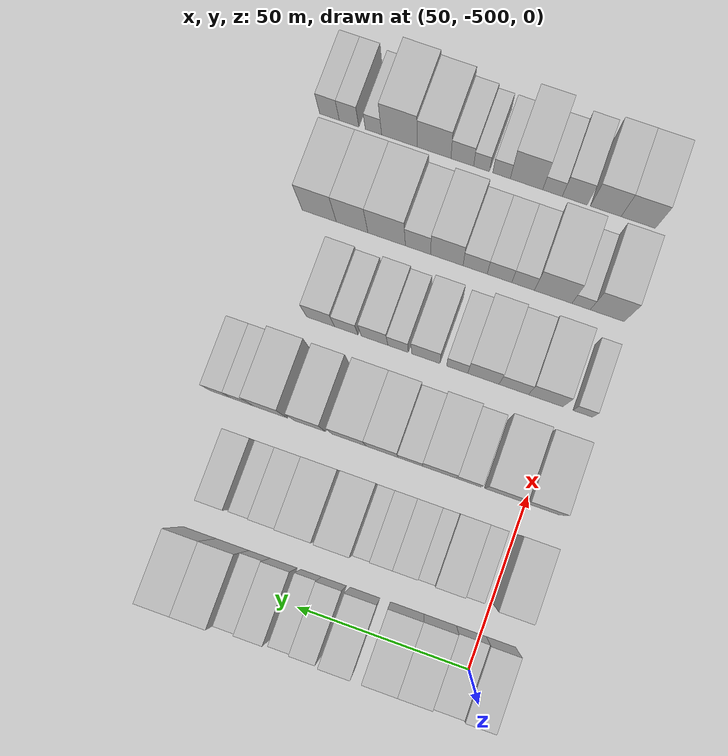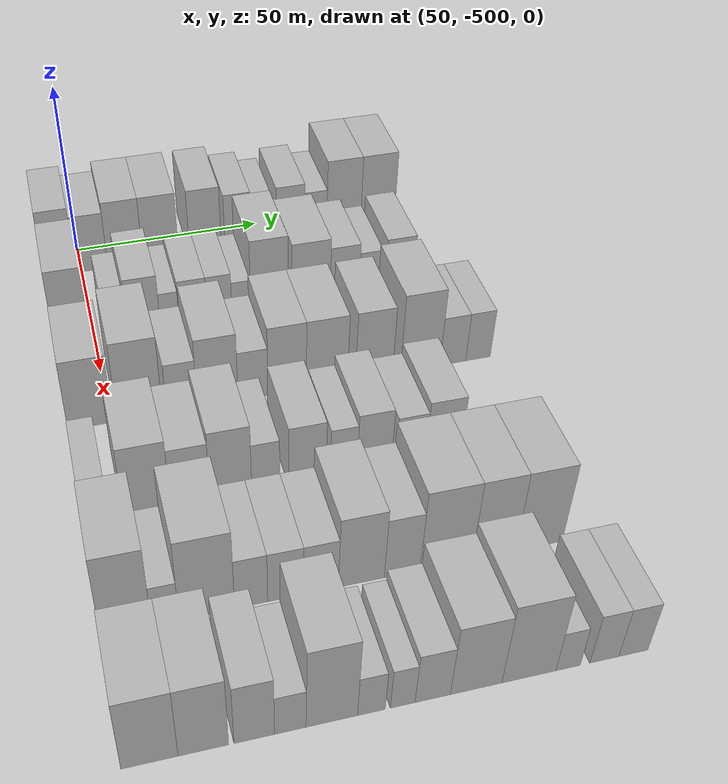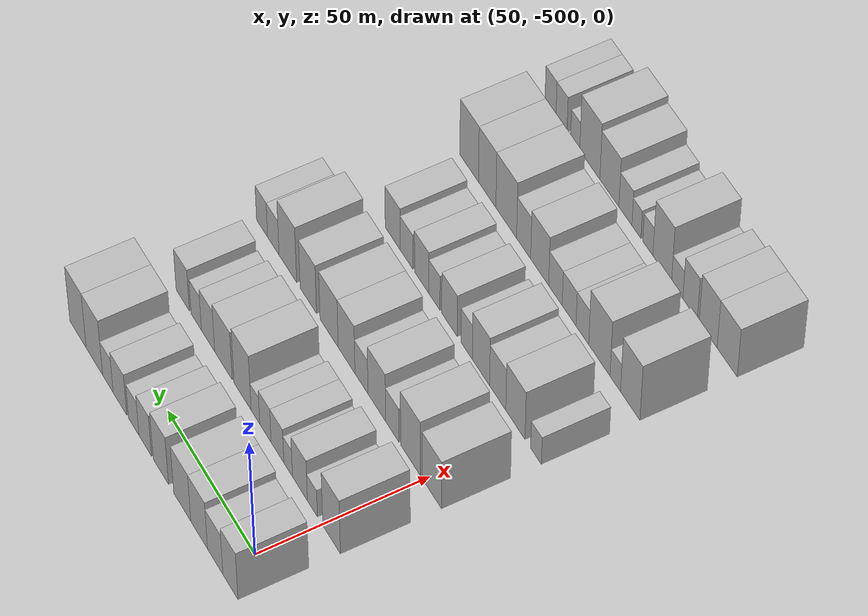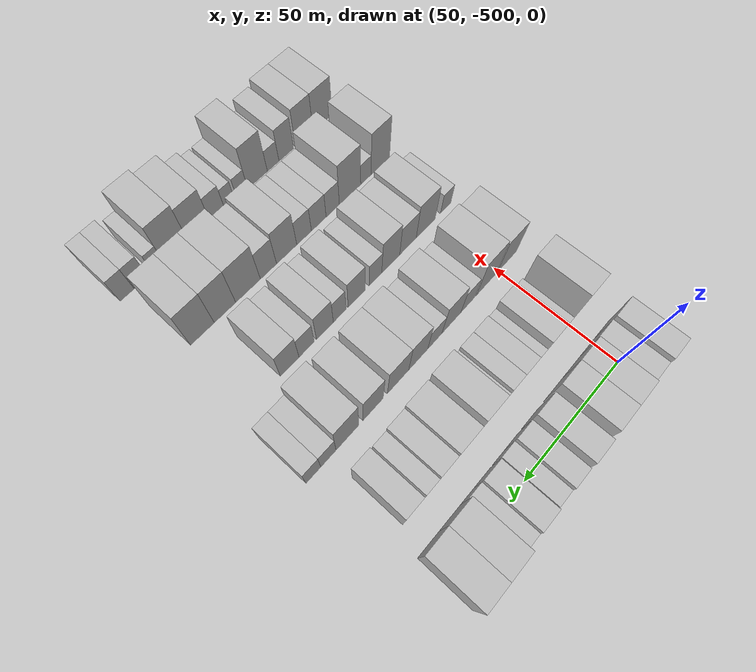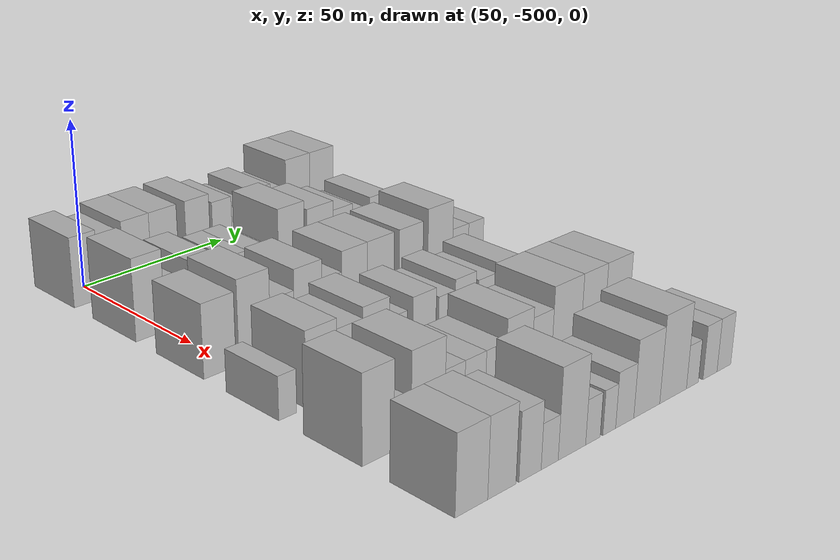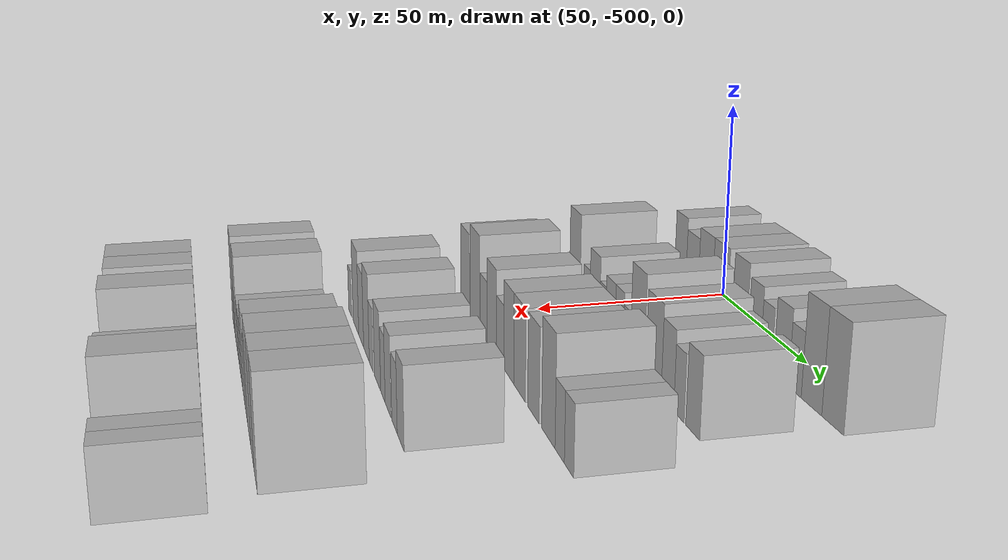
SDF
<sdf version="1.6">
 <world name="default">
  <model name="building_1">
   <static>1</static>
   <pose>50.0000 -505.7804 0 0.000000 0.000000 0.000000</pose>
   <link name="link">
    <pose>0 0 10.50 0 0 0</pose>
    <collision name="collision"><geometry><box><size>20.0000 8.4392 21.0000</size></box></geometry></collision>
    <visual name="visual">
     <cast_shadows>0</cast_shadows>
     <geometry><box><size>20.0000 8.4392 21.0000</size></box></geometry>
     <material>
      <script>
       <uri>model://HANNAS_wall/materials/scripts</uri>
       <uri>model://HANNAS_wall/materials/textures</uri>
       <name>vrc/HANNAS_wall</name>
      </script>
     </material>
    </visual>
   </link>
  </model>
  <model name="building_2">
   <static>1</static>
   <pose>50.0000 -497.2267 0 0.000000 0.000000 0.000000</pose>
   <link name="link">
    <pose>0 0 9.00 0 0 0</pose>
    <collision name="collision"><geometry><box><size>20.0000 8.6683 18.0000</size></box></geometry></collision>
    <visual name="visual">
     <cast_shadows>0</cast_shadows>
     <geometry><box><size>20.0000 8.6683 18.0000</size></box></geometry>
     <material>
      <script>
       <uri>model://HANNAS_wall/materials/scripts</uri>
       <uri>model://HANNAS_wall/materials/textures</uri>
       <name>vrc/HANNAS_wall</name>
      </script>
     </material>
    </visual>
   </link>
  </model>
  <model name="building_3">
   <static>1</static>
   <pose>50.0000 -488.1302 0 0.000000 0.000000 0.000000</pose>
   <link name="link">
    <pose>0 0 10.50 0 0 0</pose>
    <collision name="collision"><geometry><box><size>20.0000 9.5248 21.0000</size></box></geometry></collision>
    <visual name="visual">
     <cast_shadows>0</cast_shadows>
     <geometry><box><size>20.0000 9.5248 21.0000</size></box></geometry>
     <material>
      <script>
       <uri>model://HANNAS_wall/materials/scripts</uri>
       <uri>model://HANNAS_wall/materials/textures</uri>
       <name>vrc/HANNAS_wall</name>
      </script>
     </material>
    </visual>
   </link>
  </model>
  <model name="building_4">
   <static>1</static>
   <pose>50.0000 -478.4753 0 0.000000 0.000000 0.000000</pose>
   <link name="link">
    <pose>0 0 10.50 0 0 0</pose>
    <collision name="collision"><geometry><box><size>20.0000 9.7850 21.0000</size></box></geometry></collision>
    <visual name="visual">
     <cast_shadows>0</cast_shadows>
     <geometry><box><size>20.0000 9.7850 21.0000</size></box></geometry>
     <material>
      <script>
       <uri>model://HANNAS_wall/materials/scripts</uri>
       <uri>model://HANNAS_wall/materials/textures</uri>
       <name>vrc/HANNAS_wall</name>
      </script>
     </material>
    </visual>
   </link>
  </model>
  <model name="building_5">
   <static>1</static>
   <pose>50.0000 -466.1698 0 0.000000 0.000000 0.000000</pose>
   <link name="link">
    <pose>0 0 10.50 0 0 0</pose>
    <collision name="collision"><geometry><box><size>20.0000 8.8261 21.0000</size></box></geometry></collision>
    <visual name="visual">
     <cast_shadows>0</cast_shadows>
     <geometry><box><size>20.0000 8.8261 21.0000</size></box></geometry>
     <material>
      <script>
       <uri>model://HANNAS_wall/materials/scripts</uri>
       <uri>model://HANNAS_wall/materials/textures</uri>
       <name>vrc/HANNAS_wall</name>
      </script>
     </material>
    </visual>
   </link>
  </model>
  <model name="building_6">
   <static>1</static>
   <pose>50.0000 -457.1109 0 0.000000 0.000000 0.000000</pose>
   <link name="link">
    <pose>0 0 9.00 0 0 0</pose>
    <collision name="collision"><geometry><box><size>20.0000 7.2916 18.0000</size></box></geometry></collision>
    <visual name="visual">
     <cast_shadows>0</cast_shadows>
     <geometry><box><size>20.0000 7.2916 18.0000</size></box></geometry>
     <material>
      <script>
       <uri>model://HANNAS_wall/materials/scripts</uri>
       <uri>model://HANNAS_wall/materials/textures</uri>
       <name>vrc/HANNAS_wall</name>
      </script>
     </material>
    </visual>
   </link>
  </model>
  <model name="building_7">
   <static>1</static>
   <pose>50.0000 -450.3802 0 0.000000 0.000000 0.000000</pose>
   <link name="link">
    <pose>0 0 7.50 0 0 0</pose>
    <collision name="collision"><geometry><box><size>20.0000 6.1699 15.0000</size></box></geometry></collision>
    <visual name="visual">
     <cast_shadows>0</cast_shadows>
     <geometry><box><size>20.0000 6.1699 15.0000</size></box></geometry>
     <material>
      <script>
       <uri>model://HANNAS_wall/materials/scripts</uri>
       <uri>model://HANNAS_wall/materials/textures</uri>
       <name>vrc/HANNAS_wall</name>
      </script>
     </material>
    </visual>
   </link>
  </model>
  <model name="building_8">
   <static>1</static>
   <pose>50.0000 -442.2879 0 0.000000 0.000000 0.000000</pose>
   <link name="link">
    <pose>0 0 9.00 0 0 0</pose>
    <collision name="collision"><geometry><box><size>20.0000 8.0148 18.0000</size></box></geometry></collision>
    <visual name="visual">
     <cast_shadows>0</cast_shadows>
     <geometry><box><size>20.0000 8.0148 18.0000</size></box></geometry>
     <material>
      <script>
       <uri>model://HANNAS_wall/materials/scripts</uri>
       <uri>model://HANNAS_wall/materials/textures</uri>
       <name>vrc/HANNAS_wall</name>
      </script>
     </material>
    </visual>
   </link>
  </model>
  <model name="building_9">
   <static>1</static>
   <pose>50.0000 -435.1372 0 0.000000 0.000000 0.000000</pose>
   <link name="link">
    <pose>0 0 7.50 0 0 0</pose>
    <collision name="collision"><geometry><box><size>20.0000 6.2867 15.0000</size></box></geometry></collision>
    <visual name="visual">
     <cast_shadows>0</cast_shadows>
     <geometry><box><size>20.0000 6.2867 15.0000</size></box></geometry>
     <material>
      <script>
       <uri>model://HANNAS_wall/materials/scripts</uri>
       <uri>model://HANNAS_wall/materials/textures</uri>
       <name>vrc/HANNAS_wall</name>
      </script>
     </material>
    </visual>
   </link>
  </model>
  <model name="building_10">
   <static>1</static>
   <pose>50.0000 -427.0935 0 0.000000 0.000000 0.000000</pose>
   <link name="link">
    <pose>0 0 12.00 0 0 0</pose>
    <collision name="collision"><geometry><box><size>20.0000 9.8006 24.0000</size></box></geometry></collision>
    <visual name="visual">
     <cast_shadows>0</cast_shadows>
     <geometry><box><size>20.0000 9.8006 24.0000</size></box></geometry>
     <material>
      <script>
       <uri>model://HANNAS_wall/materials/scripts</uri>
       <uri>model://HANNAS_wall/materials/textures</uri>
       <name>vrc/HANNAS_wall</name>
      </script>
     </material>
    </visual>
   </link>
  </model>
  <model name="building_11">
   <static>1</static>
   <pose>50.0000 -417.2737 0 0.000000 0.000000 0.000000</pose>
   <link name="link">
    <pose>0 0 12.00 0 0 0</pose>
    <collision name="collision"><geometry><box><size>20.0000 9.8390 24.0000</size></box></geometry></collision>
    <visual name="visual">
     <cast_shadows>0</cast_shadows>
     <geometry><box><size>20.0000 9.8390 24.0000</size></box></geometry>
     <material>
      <script>
       <uri>model://HANNAS_wall/materials/scripts</uri>
       <uri>model://HANNAS_wall/materials/textures</uri>
       <name>vrc/HANNAS_wall</name>
      </script>
     </material>
    </visual>
   </link>
  </model>
  <model name="building_113">
   <static>1</static>
   <pose>79.0000 -505.1575 0 0.000000 0.000000 0.000000</pose>
   <link name="link">
    <pose>0 0 12.00 0 0 0</pose>
    <collision name="collision"><geometry><box><size>20.0000 9.6850 24.0000</size></box></geometry></collision>
    <visual name="visual">
     <cast_shadows>0</cast_shadows>
     <geometry><box><size>20.0000 9.6850 24.0000</size></box></geometry>
     <material>
      <script>
       <uri>model://HANNAS_wall/materials/scripts</uri>
       <uri>model://HANNAS_wall/materials/textures</uri>
       <name>vrc/HANNAS_wall</name>
      </script>
     </material>
    </visual>
   </link>
  </model>
  <model name="building_114">
   <static>1</static>
   <pose>79.0000 -494.5348 0 0.000000 0.000000 0.000000</pose>
   <link name="link">
    <pose>0 0 6.00 0 0 0</pose>
    <collision name="collision"><geometry><box><size>20.0000 5.5605 12.0000</size></box></geometry></collision>
    <visual name="visual">
     <cast_shadows>0</cast_shadows>
     <geometry><box><size>20.0000 5.5605 12.0000</size></box></geometry>
     <material>
      <script>
       <uri>model://HANNAS_wall/materials/scripts</uri>
       <uri>model://HANNAS_wall/materials/textures</uri>
       <name>vrc/HANNAS_wall</name>
      </script>
     </material>
    </visual>
   </link>
  </model>
  <model name="building_115">
   <static>1</static>
   <pose>79.0000 -487.5639 0 0.000000 0.000000 0.000000</pose>
   <link name="link">
    <pose>0 0 9.00 0 0 0</pose>
    <collision name="collision"><geometry><box><size>20.0000 8.3813 18.0000</size></box></geometry></collision>
    <visual name="visual">
     <cast_shadows>0</cast_shadows>
     <geometry><box><size>20.0000 8.3813 18.0000</size></box></geometry>
     <material>
      <script>
       <uri>model://HANNAS_wall/materials/scripts</uri>
       <uri>model://HANNAS_wall/materials/textures</uri>
       <name>vrc/HANNAS_wall</name>
      </script>
     </material>
    </visual>
   </link>
  </model>
  <model name="building_116">
   <static>1</static>
   <pose>79.0000 -480.9613 0 0.000000 0.000000 0.000000</pose>
   <link name="link">
    <pose>0 0 6.00 0 0 0</pose>
    <collision name="collision"><geometry><box><size>20.0000 4.8240 12.0000</size></box></geometry></collision>
    <visual name="visual">
     <cast_shadows>0</cast_shadows>
     <geometry><box><size>20.0000 4.8240 12.0000</size></box></geometry>
     <material>
      <script>
       <uri>model://HANNAS_wall/materials/scripts</uri>
       <uri>model://HANNAS_wall/materials/textures</uri>
       <name>vrc/HANNAS_wall</name>
      </script>
     </material>
    </visual>
   </link>
  </model>
  <model name="building_117">
   <static>1</static>
   <pose>79.0000 -474.9723 0 0.000000 0.000000 0.000000</pose>
   <link name="link">
    <pose>0 0 7.50 0 0 0</pose>
    <collision name="collision"><geometry><box><size>20.0000 7.1540 15.0000</size></box></geometry></collision>
    <visual name="visual">
     <cast_shadows>0</cast_shadows>
     <geometry><box><size>20.0000 7.1540 15.0000</size></box></geometry>
     <material>
      <script>
       <uri>model://HANNAS_wall/materials/scripts</uri>
       <uri>model://HANNAS_wall/materials/textures</uri>
       <name>vrc/HANNAS_wall</name>
      </script>
     </material>
    </visual>
   </link>
  </model>
  <model name="building_118">
   <static>1</static>
   <pose>79.0000 -468.1647 0 0.000000 0.000000 0.000000</pose>
   <link name="link">
    <pose>0 0 7.50 0 0 0</pose>
    <collision name="collision"><geometry><box><size>20.0000 6.4611 15.0000</size></box></geometry></collision>
    <visual name="visual">
     <cast_shadows>0</cast_shadows>
     <geometry><box><size>20.0000 6.4611 15.0000</size></box></geometry>
     <material>
      <script>
       <uri>model://HANNAS_wall/materials/scripts</uri>
       <uri>model://HANNAS_wall/materials/textures</uri>
       <name>vrc/HANNAS_wall</name>
      </script>
     </material>
    </visual>
   </link>
  </model>
  <model name="building_119">
   <static>1</static>
   <pose>79.0000 -462.4666 0 0.000000 0.000000 0.000000</pose>
   <link name="link">
    <pose>0 0 6.00 0 0 0</pose>
    <collision name="collision"><geometry><box><size>20.0000 4.9352 12.0000</size></box></geometry></collision>
    <visual name="visual">
     <cast_shadows>0</cast_shadows>
     <geometry><box><size>20.0000 4.9352 12.0000</size></box></geometry>
     <material>
      <script>
       <uri>model://HANNAS_wall/materials/scripts</uri>
       <uri>model://HANNAS_wall/materials/textures</uri>
       <name>vrc/HANNAS_wall</name>
      </script>
     </material>
    </visual>
   </link>
  </model>
  <model name="building_120">
   <static>1</static>
   <pose>79.0000 -455.0817 0 0.000000 0.000000 0.000000</pose>
   <link name="link">
    <pose>0 0 12.00 0 0 0</pose>
    <collision name="collision"><geometry><box><size>20.0000 9.8345 24.0000</size></box></geometry></collision>
    <visual name="visual">
     <cast_shadows>0</cast_shadows>
     <geometry><box><size>20.0000 9.8345 24.0000</size></box></geometry>
     <material>
      <script>
       <uri>model://HANNAS_wall/materials/scripts</uri>
       <uri>model://HANNAS_wall/materials/textures</uri>
       <name>vrc/HANNAS_wall</name>
      </script>
     </material>
    </visual>
   </link>
  </model>
  <model name="building_121">
   <static>1</static>
   <pose>79.0000 -444.0837 0 0.000000 0.000000 0.000000</pose>
   <link name="link">
    <pose>0 0 10.50 0 0 0</pose>
    <collision name="collision"><geometry><box><size>20.0000 10.1616 21.0000</size></box></geometry></collision>
    <visual name="visual">
     <cast_shadows>0</cast_shadows>
     <geometry><box><size>20.0000 10.1616 21.0000</size></box></geometry>
     <material>
      <script>
       <uri>model://HANNAS_wall/materials/scripts</uri>
       <uri>model://HANNAS_wall/materials/textures</uri>
       <name>vrc/HANNAS_wall</name>
      </script>
     </material>
    </visual>
   </link>
  </model>
  <model name="building_122">
   <static>1</static>
   <pose>79.0000 -435.1105 0 0.000000 0.000000 0.000000</pose>
   <link name="link">
    <pose>0 0 9.00 0 0 0</pose>
    <collision name="collision"><geometry><box><size>20.0000 7.7848 18.0000</size></box></geometry></collision>
    <visual name="visual">
     <cast_shadows>0</cast_shadows>
     <geometry><box><size>20.0000 7.7848 18.0000</size></box></geometry>
     <material>
      <script>
       <uri>model://HANNAS_wall/materials/scripts</uri>
       <uri>model://HANNAS_wall/materials/textures</uri>
       <name>vrc/HANNAS_wall</name>
      </script>
     </material>
    </visual>
   </link>
  </model>
  <model name="building_123">
   <static>1</static>
   <pose>79.0000 -428.2041 0 0.000000 0.000000 0.000000</pose>
   <link name="link">
    <pose>0 0 7.50 0 0 0</pose>
    <collision name="collision"><geometry><box><size>20.0000 6.0279 15.0000</size></box></geometry></collision>
    <visual name="visual">
     <cast_shadows>0</cast_shadows>
     <geometry><box><size>20.0000 6.0279 15.0000</size></box></geometry>
     <material>
      <script>
       <uri>model://HANNAS_wall/materials/scripts</uri>
       <uri>model://HANNAS_wall/materials/textures</uri>
       <name>vrc/HANNAS_wall</name>
      </script>
     </material>
    </visual>
   </link>
  </model>
  <model name="building_124">
   <static>1</static>
   <pose>79.0000 -420.2808 0 0.000000 0.000000 0.000000</pose>
   <link name="link">
    <pose>0 0 9.00 0 0 0</pose>
    <collision name="collision"><geometry><box><size>20.0000 7.8188 18.0000</size></box></geometry></collision>
    <visual name="visual">
     <cast_shadows>0</cast_shadows>
     <geometry><box><size>20.0000 7.8188 18.0000</size></box></geometry>
     <material>
      <script>
       <uri>model://HANNAS_wall/materials/scripts</uri>
       <uri>model://HANNAS_wall/materials/textures</uri>
       <name>vrc/HANNAS_wall</name>
      </script>
     </material>
    </visual>
   </link>
  </model>
  <model name="building_226">
   <static>1</static>
   <pose>108.0000 -504.7560 0 0.000000 0.000000 0.000000</pose>
   <link name="link">
    <pose>0 0 10.50 0 0 0</pose>
    <collision name="collision"><geometry><box><size>20.0000 10.4881 21.0000</size></box></geometry></collision>
    <visual name="visual">
     <cast_shadows>0</cast_shadows>
     <geometry><box><size>20.0000 10.4881 21.0000</size></box></geometry>
     <material>
      <script>
       <uri>model://HANNAS_wall/materials/scripts</uri>
       <uri>model://HANNAS_wall/materials/textures</uri>
       <name>vrc/HANNAS_wall</name>
      </script>
     </material>
    </visual>
   </link>
  </model>
  <model name="building_227">
   <static>1</static>
   <pose>108.0000 -493.1572 0 0.000000 0.000000 0.000000</pose>
   <link name="link">
    <pose>0 0 12.00 0 0 0</pose>
    <collision name="collision"><geometry><box><size>20.0000 10.7094 24.0000</size></box></geometry></collision>
    <visual name="visual">
     <cast_shadows>0</cast_shadows>
     <geometry><box><size>20.0000 10.7094 24.0000</size></box></geometry>
     <material>
      <script>
       <uri>model://HANNAS_wall/materials/scripts</uri>
       <uri>model://HANNAS_wall/materials/textures</uri>
       <name>vrc/HANNAS_wall</name>
      </script>
     </material>
    </visual>
   </link>
  </model>
  <model name="building_228">
   <static>1</static>
   <pose>108.0000 -483.1496 0 0.000000 0.000000 0.000000</pose>
   <link name="link">
    <pose>0 0 7.50 0 0 0</pose>
    <collision name="collision"><geometry><box><size>20.0000 7.3059 15.0000</size></box></geometry></collision>
    <visual name="visual">
     <cast_shadows>0</cast_shadows>
     <geometry><box><size>20.0000 7.3059 15.0000</size></box></geometry>
     <material>
      <script>
       <uri>model://HANNAS_wall/materials/scripts</uri>
       <uri>model://HANNAS_wall/materials/textures</uri>
       <name>vrc/HANNAS_wall</name>
      </script>
     </material>
    </visual>
   </link>
  </model>
  <model name="building_229">
   <static>1</static>
   <pose>108.0000 -474.5673 0 0.000000 0.000000 0.000000</pose>
   <link name="link">
    <pose>0 0 10.50 0 0 0</pose>
    <collision name="collision"><geometry><box><size>20.0000 9.8587 21.0000</size></box></geometry></collision>
    <visual name="visual">
     <cast_shadows>0</cast_shadows>
     <geometry><box><size>20.0000 9.8587 21.0000</size></box></geometry>
     <material>
      <script>
       <uri>model://HANNAS_wall/materials/scripts</uri>
       <uri>model://HANNAS_wall/materials/textures</uri>
       <name>vrc/HANNAS_wall</name>
      </script>
     </material>
    </visual>
   </link>
  </model>
  <model name="building_230">
   <static>1</static>
   <pose>108.0000 -465.9992 0 0.000000 0.000000 0.000000</pose>
   <link name="link">
    <pose>0 0 7.50 0 0 0</pose>
    <collision name="collision"><geometry><box><size>20.0000 7.2774 15.0000</size></box></geometry></collision>
    <visual name="visual">
     <cast_shadows>0</cast_shadows>
     <geometry><box><size>20.0000 7.2774 15.0000</size></box></geometry>
     <material>
      <script>
       <uri>model://HANNAS_wall/materials/scripts</uri>
       <uri>model://HANNAS_wall/materials/textures</uri>
       <name>vrc/HANNAS_wall</name>
      </script>
     </material>
    </visual>
   </link>
  </model>
  <model name="building_231">
   <static>1</static>
   <pose>108.0000 -457.6447 0 0.000000 0.000000 0.000000</pose>
   <link name="link">
    <pose>0 0 10.50 0 0 0</pose>
    <collision name="collision"><geometry><box><size>20.0000 9.4317 21.0000</size></box></geometry></collision>
    <visual name="visual">
     <cast_shadows>0</cast_shadows>
     <geometry><box><size>20.0000 9.4317 21.0000</size></box></geometry>
     <material>
      <script>
       <uri>model://HANNAS_wall/materials/scripts</uri>
       <uri>model://HANNAS_wall/materials/textures</uri>
       <name>vrc/HANNAS_wall</name>
      </script>
     </material>
    </visual>
   </link>
  </model>
  <model name="building_232">
   <static>1</static>
   <pose>108.0000 -447.7664 0 0.000000 0.000000 0.000000</pose>
   <link name="link">
    <pose>0 0 10.50 0 0 0</pose>
    <collision name="collision"><geometry><box><size>20.0000 10.3249 21.0000</size></box></geometry></collision>
    <visual name="visual">
     <cast_shadows>0</cast_shadows>
     <geometry><box><size>20.0000 10.3249 21.0000</size></box></geometry>
     <material>
      <script>
       <uri>model://HANNAS_wall/materials/scripts</uri>
       <uri>model://HANNAS_wall/materials/textures</uri>
       <name>vrc/HANNAS_wall</name>
      </script>
     </material>
    </visual>
   </link>
  </model>
  <model name="building_233">
   <static>1</static>
   <pose>108.0000 -435.9049 0 0.000000 0.000000 0.000000</pose>
   <link name="link">
    <pose>0 0 10.50 0 0 0</pose>
    <collision name="collision"><geometry><box><size>20.0000 9.3981 21.0000</size></box></geometry></collision>
    <visual name="visual">
     <cast_shadows>0</cast_shadows>
     <geometry><box><size>20.0000 9.3981 21.0000</size></box></geometry>
     <material>
      <script>
       <uri>model://HANNAS_wall/materials/scripts</uri>
       <uri>model://HANNAS_wall/materials/textures</uri>
       <name>vrc/HANNAS_wall</name>
      </script>
     </material>
    </visual>
   </link>
  </model>
  <model name="building_234">
   <static>1</static>
   <pose>108.0000 -424.1078 0 0.000000 0.000000 0.000000</pose>
   <link name="link">
    <pose>0 0 12.00 0 0 0</pose>
    <collision name="collision"><geometry><box><size>20.0000 10.1962 24.0000</size></box></geometry></collision>
    <visual name="visual">
     <cast_shadows>0</cast_shadows>
     <geometry><box><size>20.0000 10.1962 24.0000</size></box></geometry>
     <material>
      <script>
       <uri>model://HANNAS_wall/materials/scripts</uri>
       <uri>model://HANNAS_wall/materials/textures</uri>
       <name>vrc/HANNAS_wall</name>
      </script>
     </material>
    </visual>
   </link>
  </model>
  <model name="building_235">
   <static>1</static>
   <pose>108.0000 -415.6591 0 0.000000 0.000000 0.000000</pose>
   <link name="link">
    <pose>0 0 7.50 0 0 0</pose>
    <collision name="collision"><geometry><box><size>20.0000 6.7012 15.0000</size></box></geometry></collision>
    <visual name="visual">
     <cast_shadows>0</cast_shadows>
     <geometry><box><size>20.0000 6.7012 15.0000</size></box></geometry>
     <material>
      <script>
       <uri>model://HANNAS_wall/materials/scripts</uri>
       <uri>model://HANNAS_wall/materials/textures</uri>
       <name>vrc/HANNAS_wall</name>
      </script>
     </material>
    </visual>
   </link>
  </model>
  <model name="building_236">
   <static>1</static>
   <pose>108.0000 -409.0995 0 0.000000 0.000000 0.000000</pose>
   <link name="link">
    <pose>0 0 7.50 0 0 0</pose>
    <collision name="collision"><geometry><box><size>20.0000 6.4179 15.0000</size></box></geometry></collision>
    <visual name="visual">
     <cast_shadows>0</cast_shadows>
     <geometry><box><size>20.0000 6.4179 15.0000</size></box></geometry>
     <material>
      <script>
       <uri>model://HANNAS_wall/materials/scripts</uri>
       <uri>model://HANNAS_wall/materials/textures</uri>
       <name>vrc/HANNAS_wall</name>
      </script>
     </material>
    </visual>
   </link>
  </model>
  <model name="building_338">
   <static>1</static>
   <pose>137.0000 -507.1311 0 0.000000 0.000000 0.000000</pose>
   <link name="link">
    <pose>0 0 6.00 0 0 0</pose>
    <collision name="collision"><geometry><box><size>20.0000 5.7378 12.0000</size></box></geometry></collision>
    <visual name="visual">
     <cast_shadows>0</cast_shadows>
     <geometry><box><size>20.0000 5.7378 12.0000</size></box></geometry>
     <material>
      <script>
       <uri>model://HANNAS_wall/materials/scripts</uri>
       <uri>model://HANNAS_wall/materials/textures</uri>
       <name>vrc/HANNAS_wall</name>
      </script>
     </material>
    </visual>
   </link>
  </model>
  <model name="building_339">
   <static>1</static>
   <pose>137.0000 -496.1020 0 0.000000 0.000000 0.000000</pose>
   <link name="link">
    <pose>0 0 10.50 0 0 0</pose>
    <collision name="collision"><geometry><box><size>20.0000 10.3204 21.0000</size></box></geometry></collision>
    <visual name="visual">
     <cast_shadows>0</cast_shadows>
     <geometry><box><size>20.0000 10.3204 21.0000</size></box></geometry>
     <material>
      <script>
       <uri>model://HANNAS_wall/materials/scripts</uri>
       <uri>model://HANNAS_wall/materials/textures</uri>
       <name>vrc/HANNAS_wall</name>
      </script>
     </material>
    </visual>
   </link>
  </model>
  <model name="building_340">
   <static>1</static>
   <pose>137.0000 -486.5506 0 0.000000 0.000000 0.000000</pose>
   <link name="link">
    <pose>0 0 9.00 0 0 0</pose>
    <collision name="collision"><geometry><box><size>20.0000 8.7823 18.0000</size></box></geometry></collision>
    <visual name="visual">
     <cast_shadows>0</cast_shadows>
     <geometry><box><size>20.0000 8.7823 18.0000</size></box></geometry>
     <material>
      <script>
       <uri>model://HANNAS_wall/materials/scripts</uri>
       <uri>model://HANNAS_wall/materials/textures</uri>
       <name>vrc/HANNAS_wall</name>
      </script>
     </material>
    </visual>
   </link>
  </model>
  <model name="building_341">
   <static>1</static>
   <pose>137.0000 -477.4898 0 0.000000 0.000000 0.000000</pose>
   <link name="link">
    <pose>0 0 10.50 0 0 0</pose>
    <collision name="collision"><geometry><box><size>20.0000 9.3394 21.0000</size></box></geometry></collision>
    <visual name="visual">
     <cast_shadows>0</cast_shadows>
     <geometry><box><size>20.0000 9.3394 21.0000</size></box></geometry>
     <material>
      <script>
       <uri>model://HANNAS_wall/materials/scripts</uri>
       <uri>model://HANNAS_wall/materials/textures</uri>
       <name>vrc/HANNAS_wall</name>
      </script>
     </material>
    </visual>
   </link>
  </model>
  <model name="building_342">
   <static>1</static>
   <pose>137.0000 -469.6445 0 0.000000 0.000000 0.000000</pose>
   <link name="link">
    <pose>0 0 7.50 0 0 0</pose>
    <collision name="collision"><geometry><box><size>20.0000 6.3512 15.0000</size></box></geometry></collision>
    <visual name="visual">
     <cast_shadows>0</cast_shadows>
     <geometry><box><size>20.0000 6.3512 15.0000</size></box></geometry>
     <material>
      <script>
       <uri>model://HANNAS_wall/materials/scripts</uri>
       <uri>model://HANNAS_wall/materials/textures</uri>
       <name>vrc/HANNAS_wall</name>
      </script>
     </material>
    </visual>
   </link>
  </model>
  <model name="building_343">
   <static>1</static>
   <pose>137.0000 -460.2018 0 0.000000 0.000000 0.000000</pose>
   <link name="link">
    <pose>0 0 9.00 0 0 0</pose>
    <collision name="collision"><geometry><box><size>20.0000 8.5340 18.0000</size></box></geometry></collision>
    <visual name="visual">
     <cast_shadows>0</cast_shadows>
     <geometry><box><size>20.0000 8.5340 18.0000</size></box></geometry>
     <material>
      <script>
       <uri>model://HANNAS_wall/materials/scripts</uri>
       <uri>model://HANNAS_wall/materials/textures</uri>
       <name>vrc/HANNAS_wall</name>
      </script>
     </material>
    </visual>
   </link>
  </model>
  <model name="building_344">
   <static>1</static>
   <pose>137.0000 -451.8562 0 0.000000 0.000000 0.000000</pose>
   <link name="link">
    <pose>0 0 7.50 0 0 0</pose>
    <collision name="collision"><geometry><box><size>20.0000 6.1572 15.0000</size></box></geometry></collision>
    <visual name="visual">
     <cast_shadows>0</cast_shadows>
     <geometry><box><size>20.0000 6.1572 15.0000</size></box></geometry>
     <material>
      <script>
       <uri>model://HANNAS_wall/materials/scripts</uri>
       <uri>model://HANNAS_wall/materials/textures</uri>
       <name>vrc/HANNAS_wall</name>
      </script>
     </material>
    </visual>
   </link>
  </model>
  <model name="building_345">
   <static>1</static>
   <pose>137.0000 -444.7564 0 0.000000 0.000000 0.000000</pose>
   <link name="link">
    <pose>0 0 9.00 0 0 0</pose>
    <collision name="collision"><geometry><box><size>20.0000 8.0424 18.0000</size></box></geometry></collision>
    <visual name="visual">
     <cast_shadows>0</cast_shadows>
     <geometry><box><size>20.0000 8.0424 18.0000</size></box></geometry>
     <material>
      <script>
       <uri>model://HANNAS_wall/materials/scripts</uri>
       <uri>model://HANNAS_wall/materials/textures</uri>
       <name>vrc/HANNAS_wall</name>
      </script>
     </material>
    </visual>
   </link>
  </model>
  <model name="building_346">
   <static>1</static>
   <pose>137.0000 -436.1970 0 0.000000 0.000000 0.000000</pose>
   <link name="link">
    <pose>0 0 7.50 0 0 0</pose>
    <collision name="collision"><geometry><box><size>20.0000 7.0765 15.0000</size></box></geometry></collision>
    <visual name="visual">
     <cast_shadows>0</cast_shadows>
     <geometry><box><size>20.0000 7.0765 15.0000</size></box></geometry>
     <material>
      <script>
       <uri>model://HANNAS_wall/materials/scripts</uri>
       <uri>model://HANNAS_wall/materials/textures</uri>
       <name>vrc/HANNAS_wall</name>
      </script>
     </material>
    </visual>
   </link>
  </model>
  <model name="building_347">
   <static>1</static>
   <pose>137.0000 -428.4018 0 0.000000 0.000000 0.000000</pose>
   <link name="link">
    <pose>0 0 9.00 0 0 0</pose>
    <collision name="collision"><geometry><box><size>20.0000 8.5139 18.0000</size></box></geometry></collision>
    <visual name="visual">
     <cast_shadows>0</cast_shadows>
     <geometry><box><size>20.0000 8.5139 18.0000</size></box></geometry>
     <material>
      <script>
       <uri>model://HANNAS_wall/materials/scripts</uri>
       <uri>model://HANNAS_wall/materials/textures</uri>
       <name>vrc/HANNAS_wall</name>
      </script>
     </material>
    </visual>
   </link>
  </model>
  <model name="building_450">
   <static>1</static>
   <pose>166.0000 -504.8908 0 0.000000 0.000000 0.000000</pose>
   <link name="link">
    <pose>0 0 12.00 0 0 0</pose>
    <collision name="collision"><geometry><box><size>20.0000 10.2185 24.0000</size></box></geometry></collision>
    <visual name="visual">
     <cast_shadows>0</cast_shadows>
     <geometry><box><size>20.0000 10.2185 24.0000</size></box></geometry>
     <material>
      <script>
       <uri>model://HANNAS_wall/materials/scripts</uri>
       <uri>model://HANNAS_wall/materials/textures</uri>
       <name>vrc/HANNAS_wall</name>
      </script>
     </material>
    </visual>
   </link>
  </model>
  <model name="building_451">
   <static>1</static>
   <pose>166.0000 -497.0131 0 0.000000 0.000000 0.000000</pose>
   <link name="link">
    <pose>0 0 6.00 0 0 0</pose>
    <collision name="collision"><geometry><box><size>20.0000 5.5368 12.0000</size></box></geometry></collision>
    <visual name="visual">
     <cast_shadows>0</cast_shadows>
     <geometry><box><size>20.0000 5.5368 12.0000</size></box></geometry>
     <material>
      <script>
       <uri>model://HANNAS_wall/materials/scripts</uri>
       <uri>model://HANNAS_wall/materials/textures</uri>
       <name>vrc/HANNAS_wall</name>
      </script>
     </material>
    </visual>
   </link>
  </model>
  <model name="building_452">
   <static>1</static>
   <pose>166.0000 -488.5651 0 0.000000 0.000000 0.000000</pose>
   <link name="link">
    <pose>0 0 12.00 0 0 0</pose>
    <collision name="collision"><geometry><box><size>20.0000 11.3593 24.0000</size></box></geometry></collision>
    <visual name="visual">
     <cast_shadows>0</cast_shadows>
     <geometry><box><size>20.0000 11.3593 24.0000</size></box></geometry>
     <material>
      <script>
       <uri>model://HANNAS_wall/materials/scripts</uri>
       <uri>model://HANNAS_wall/materials/textures</uri>
       <name>vrc/HANNAS_wall</name>
      </script>
     </material>
    </visual>
   </link>
  </model>
  <model name="building_453">
   <static>1</static>
   <pose>166.0000 -479.4649 0 0.000000 0.000000 0.000000</pose>
   <link name="link">
    <pose>0 0 7.50 0 0 0</pose>
    <collision name="collision"><geometry><box><size>20.0000 6.8411 15.0000</size></box></geometry></collision>
    <visual name="visual">
     <cast_shadows>0</cast_shadows>
     <geometry><box><size>20.0000 6.8411 15.0000</size></box></geometry>
     <material>
      <script>
       <uri>model://HANNAS_wall/materials/scripts</uri>
       <uri>model://HANNAS_wall/materials/textures</uri>
       <name>vrc/HANNAS_wall</name>
      </script>
     </material>
    </visual>
   </link>
  </model>
  <model name="building_454">
   <static>1</static>
   <pose>166.0000 -472.3177 0 0.000000 0.000000 0.000000</pose>
   <link name="link">
    <pose>0 0 7.50 0 0 0</pose>
    <collision name="collision"><geometry><box><size>20.0000 7.4531 15.0000</size></box></geometry></collision>
    <visual name="visual">
     <cast_shadows>0</cast_shadows>
     <geometry><box><size>20.0000 7.4531 15.0000</size></box></geometry>
     <material>
      <script>
       <uri>model://HANNAS_wall/materials/scripts</uri>
       <uri>model://HANNAS_wall/materials/textures</uri>
       <name>vrc/HANNAS_wall</name>
      </script>
     </material>
    </visual>
   </link>
  </model>
  <model name="building_455">
   <static>1</static>
   <pose>166.0000 -464.9196 0 0.000000 0.000000 0.000000</pose>
   <link name="link">
    <pose>0 0 7.50 0 0 0</pose>
    <collision name="collision"><geometry><box><size>20.0000 7.3432 15.0000</size></box></geometry></collision>
    <visual name="visual">
     <cast_shadows>0</cast_shadows>
     <geometry><box><size>20.0000 7.3432 15.0000</size></box></geometry>
     <material>
      <script>
       <uri>model://HANNAS_wall/materials/scripts</uri>
       <uri>model://HANNAS_wall/materials/textures</uri>
       <name>vrc/HANNAS_wall</name>
      </script>
     </material>
    </visual>
   </link>
  </model>
  <model name="building_456">
   <static>1</static>
   <pose>166.0000 -456.3303 0 0.000000 0.000000 0.000000</pose>
   <link name="link">
    <pose>0 0 10.50 0 0 0</pose>
    <collision name="collision"><geometry><box><size>20.0000 9.8352 21.0000</size></box></geometry></collision>
    <visual name="visual">
     <cast_shadows>0</cast_shadows>
     <geometry><box><size>20.0000 9.8352 21.0000</size></box></geometry>
     <material>
      <script>
       <uri>model://HANNAS_wall/materials/scripts</uri>
       <uri>model://HANNAS_wall/materials/textures</uri>
       <name>vrc/HANNAS_wall</name>
      </script>
     </material>
    </visual>
   </link>
  </model>
  <model name="building_457">
   <static>1</static>
   <pose>166.0000 -447.5429 0 0.000000 0.000000 0.000000</pose>
   <link name="link">
    <pose>0 0 9.00 0 0 0</pose>
    <collision name="collision"><geometry><box><size>20.0000 7.7396 18.0000</size></box></geometry></collision>
    <visual name="visual">
     <cast_shadows>0</cast_shadows>
     <geometry><box><size>20.0000 7.7396 18.0000</size></box></geometry>
     <material>
      <script>
       <uri>model://HANNAS_wall/materials/scripts</uri>
       <uri>model://HANNAS_wall/materials/textures</uri>
       <name>vrc/HANNAS_wall</name>
      </script>
     </material>
    </visual>
   </link>
  </model>
  <model name="building_458">
   <static>1</static>
   <pose>166.0000 -437.9318 0 0.000000 0.000000 0.000000</pose>
   <link name="link">
    <pose>0 0 12.00 0 0 0</pose>
    <collision name="collision"><geometry><box><size>20.0000 11.4827 24.0000</size></box></geometry></collision>
    <visual name="visual">
     <cast_shadows>0</cast_shadows>
     <geometry><box><size>20.0000 11.4827 24.0000</size></box></geometry>
     <material>
      <script>
       <uri>model://HANNAS_wall/materials/scripts</uri>
       <uri>model://HANNAS_wall/materials/textures</uri>
       <name>vrc/HANNAS_wall</name>
      </script>
     </material>
    </visual>
   </link>
  </model>
  <model name="building_459">
   <static>1</static>
   <pose>166.0000 -427.3333 0 0.000000 0.000000 0.000000</pose>
   <link name="link">
    <pose>0 0 12.00 0 0 0</pose>
    <collision name="collision"><geometry><box><size>20.0000 9.7144 24.0000</size></box></geometry></collision>
    <visual name="visual">
     <cast_shadows>0</cast_shadows>
     <geometry><box><size>20.0000 9.7144 24.0000</size></box></geometry>
     <material>
      <script>
       <uri>model://HANNAS_wall/materials/scripts</uri>
       <uri>model://HANNAS_wall/materials/textures</uri>
       <name>vrc/HANNAS_wall</name>
      </script>
     </material>
    </visual>
   </link>
  </model>
  <model name="building_460">
   <static>1</static>
   <pose>166.0000 -417.2448 0 0.000000 0.000000 0.000000</pose>
   <link name="link">
    <pose>0 0 12.00 0 0 0</pose>
    <collision name="collision"><geometry><box><size>20.0000 10.4625 24.0000</size></box></geometry></collision>
    <visual name="visual">
     <cast_shadows>0</cast_shadows>
     <geometry><box><size>20.0000 10.4625 24.0000</size></box></geometry>
     <material>
      <script>
       <uri>model://HANNAS_wall/materials/scripts</uri>
       <uri>model://HANNAS_wall/materials/textures</uri>
       <name>vrc/HANNAS_wall</name>
      </script>
     </material>
    </visual>
   </link>
  </model>
  <model name="building_553">
   <static>1</static>
   <pose>195.0000 -504.7843 0 0.000000 0.000000 0.000000</pose>
   <link name="link">
    <pose>0 0 10.50 0 0 0</pose>
    <collision name="collision"><geometry><box><size>20.0000 10.4314 21.0000</size></box></geometry></collision>
    <visual name="visual">
     <cast_shadows>0</cast_shadows>
     <geometry><box><size>20.0000 10.4314 21.0000</size></box></geometry>
     <material>
      <script>
       <uri>model://HANNAS_wall/materials/scripts</uri>
       <uri>model://HANNAS_wall/materials/textures</uri>
       <name>vrc/HANNAS_wall</name>
      </script>
     </material>
    </visual>
   </link>
  </model>
  <model name="building_554">
   <static>1</static>
   <pose>195.0000 -494.8892 0 0.000000 0.000000 0.000000</pose>
   <link name="link">
    <pose>0 0 10.50 0 0 0</pose>
    <collision name="collision"><geometry><box><size>20.0000 9.3587 21.0000</size></box></geometry></collision>
    <visual name="visual">
     <cast_shadows>0</cast_shadows>
     <geometry><box><size>20.0000 9.3587 21.0000</size></box></geometry>
     <material>
      <script>
       <uri>model://HANNAS_wall/materials/scripts</uri>
       <uri>model://HANNAS_wall/materials/textures</uri>
       <name>vrc/HANNAS_wall</name>
      </script>
     </material>
    </visual>
   </link>
  </model>
  <model name="building_555">
   <static>1</static>
   <pose>195.0000 -485.4062 0 0.000000 0.000000 0.000000</pose>
   <link name="link">
    <pose>0 0 9.00 0 0 0</pose>
    <collision name="collision"><geometry><box><size>20.0000 7.6072 18.0000</size></box></geometry></collision>
    <visual name="visual">
     <cast_shadows>0</cast_shadows>
     <geometry><box><size>20.0000 7.6072 18.0000</size></box></geometry>
     <material>
      <script>
       <uri>model://HANNAS_wall/materials/scripts</uri>
       <uri>model://HANNAS_wall/materials/textures</uri>
       <name>vrc/HANNAS_wall</name>
      </script>
     </material>
    </visual>
   </link>
  </model>
  <model name="building_556">
   <static>1</static>
   <pose>195.0000 -478.6053 0 0.000000 0.000000 0.000000</pose>
   <link name="link">
    <pose>0 0 6.00 0 0 0</pose>
    <collision name="collision"><geometry><box><size>20.0000 5.9947 12.0000</size></box></geometry></collision>
    <visual name="visual">
     <cast_shadows>0</cast_shadows>
     <geometry><box><size>20.0000 5.9947 12.0000</size></box></geometry>
     <material>
      <script>
       <uri>model://HANNAS_wall/materials/scripts</uri>
       <uri>model://HANNAS_wall/materials/textures</uri>
       <name>vrc/HANNAS_wall</name>
      </script>
     </material>
    </visual>
   </link>
  </model>
  <model name="building_557">
   <static>1</static>
   <pose>195.0000 -470.6420 0 0.000000 0.000000 0.000000</pose>
   <link name="link">
    <pose>0 0 12.00 0 0 0</pose>
    <collision name="collision"><geometry><box><size>20.0000 9.9318 24.0000</size></box></geometry></collision>
    <visual name="visual">
     <cast_shadows>0</cast_shadows>
     <geometry><box><size>20.0000 9.9318 24.0000</size></box></geometry>
     <material>
      <script>
       <uri>model://HANNAS_wall/materials/scripts</uri>
       <uri>model://HANNAS_wall/materials/textures</uri>
       <name>vrc/HANNAS_wall</name>
      </script>
     </material>
    </visual>
   </link>
  </model>
  <model name="building_558">
   <static>1</static>
   <pose>195.0000 -462.9730 0 0.000000 0.000000 0.000000</pose>
   <link name="link">
    <pose>0 0 6.00 0 0 0</pose>
    <collision name="collision"><geometry><box><size>20.0000 5.4063 12.0000</size></box></geometry></collision>
    <visual name="visual">
     <cast_shadows>0</cast_shadows>
     <geometry><box><size>20.0000 5.4063 12.0000</size></box></geometry>
     <material>
      <script>
       <uri>model://HANNAS_wall/materials/scripts</uri>
       <uri>model://HANNAS_wall/materials/textures</uri>
       <name>vrc/HANNAS_wall</name>
      </script>
     </material>
    </visual>
   </link>
  </model>
  <model name="building_559">
   <static>1</static>
   <pose>195.0000 -456.8382 0 0.000000 0.000000 0.000000</pose>
   <link name="link">
    <pose>0 0 6.00 0 0 0</pose>
    <collision name="collision"><geometry><box><size>20.0000 4.8633 12.0000</size></box></geometry></collision>
    <visual name="visual">
     <cast_shadows>0</cast_shadows>
     <geometry><box><size>20.0000 4.8633 12.0000</size></box></geometry>
     <material>
      <script>
       <uri>model://HANNAS_wall/materials/scripts</uri>
       <uri>model://HANNAS_wall/materials/textures</uri>
       <name>vrc/HANNAS_wall</name>
      </script>
     </material>
    </visual>
   </link>
  </model>
  <model name="building_560">
   <static>1</static>
   <pose>195.0000 -450.9000 0 0.000000 0.000000 0.000000</pose>
   <link name="link">
    <pose>0 0 7.50 0 0 0</pose>
    <collision name="collision"><geometry><box><size>20.0000 7.0131 15.0000</size></box></geometry></collision>
    <visual name="visual">
     <cast_shadows>0</cast_shadows>
     <geometry><box><size>20.0000 7.0131 15.0000</size></box></geometry>
     <material>
      <script>
       <uri>model://HANNAS_wall/materials/scripts</uri>
       <uri>model://HANNAS_wall/materials/textures</uri>
       <name>vrc/HANNAS_wall</name>
      </script>
     </material>
    </visual>
   </link>
  </model>
  <model name="building_561">
   <static>1</static>
   <pose>195.0000 -442.1988 0 0.000000 0.000000 0.000000</pose>
   <link name="link">
    <pose>0 0 10.50 0 0 0</pose>
    <collision name="collision"><geometry><box><size>20.0000 10.3893 21.0000</size></box></geometry></collision>
    <visual name="visual">
     <cast_shadows>0</cast_shadows>
     <geometry><box><size>20.0000 10.3893 21.0000</size></box></geometry>
     <material>
      <script>
       <uri>model://HANNAS_wall/materials/scripts</uri>
       <uri>model://HANNAS_wall/materials/textures</uri>
       <name>vrc/HANNAS_wall</name>
      </script>
     </material>
    </visual>
   </link>
  </model>
  <model name="building_562">
   <static>1</static>
   <pose>195.0000 -431.4692 0 0.000000 0.000000 0.000000</pose>
   <link name="link">
    <pose>0 0 12.00 0 0 0</pose>
    <collision name="collision"><geometry><box><size>20.0000 11.0700 24.0000</size></box></geometry></collision>
    <visual name="visual">
     <cast_shadows>0</cast_shadows>
     <geometry><box><size>20.0000 11.0700 24.0000</size></box></geometry>
     <material>
      <script>
       <uri>model://HANNAS_wall/materials/scripts</uri>
       <uri>model://HANNAS_wall/materials/textures</uri>
       <name>vrc/HANNAS_wall</name>
      </script>
     </material>
    </visual>
   </link>
  </model>
  <model name="building_563">
   <static>1</static>
   <pose>195.0000 -423.4018 0 0.000000 0.000000 0.000000</pose>
   <link name="link">
    <pose>0 0 6.00 0 0 0</pose>
    <collision name="collision"><geometry><box><size>20.0000 5.0647 12.0000</size></box></geometry></collision>
    <visual name="visual">
     <cast_shadows>0</cast_shadows>
     <geometry><box><size>20.0000 5.0647 12.0000</size></box></geometry>
     <material>
      <script>
       <uri>model://HANNAS_wall/materials/scripts</uri>
       <uri>model://HANNAS_wall/materials/textures</uri>
       <name>vrc/HANNAS_wall</name>
      </script>
     </material>
    </visual>
   </link>
  </model>
  <model name="building_564">
   <static>1</static>
   <pose>195.0000 -415.8171 0 0.000000 0.000000 0.000000</pose>
   <link name="link">
    <pose>0 0 7.50 0 0 0</pose>
    <collision name="collision"><geometry><box><size>20.0000 6.1049 15.0000</size></box></geometry></collision>
    <visual name="visual">
     <cast_shadows>0</cast_shadows>
     <geometry><box><size>20.0000 6.1049 15.0000</size></box></geometry>
     <material>
      <script>
       <uri>model://HANNAS_wall/materials/scripts</uri>
       <uri>model://HANNAS_wall/materials/textures</uri>
       <name>vrc/HANNAS_wall</name>
      </script>
     </material>
    </visual>
   </link>
  </model>
  <model name="building_565">
   <static>1</static>
   <pose>195.0000 -409.7051 0 0.000000 0.000000 0.000000</pose>
   <link name="link">
    <pose>0 0 7.50 0 0 0</pose>
    <collision name="collision"><geometry><box><size>20.0000 6.1190 15.0000</size></box></geometry></collision>
    <visual name="visual">
     <cast_shadows>0</cast_shadows>
     <geometry><box><size>20.0000 6.1190 15.0000</size></box></geometry>
     <material>
      <script>
       <uri>model://HANNAS_wall/materials/scripts</uri>
       <uri>model://HANNAS_wall/materials/textures</uri>
       <name>vrc/HANNAS_wall</name>
      </script>
     </material>
    </visual>
   </link>
  </model>
 </world>
</sdf>
